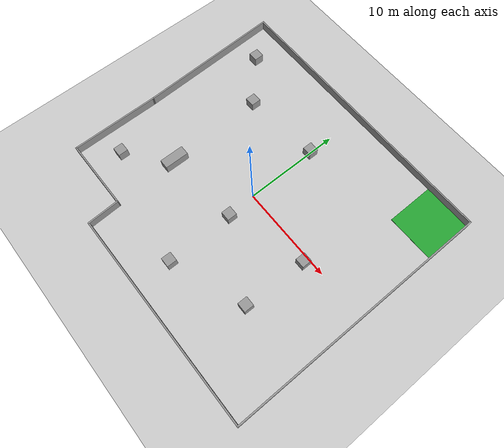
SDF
<sdf version="1.6">
 <world name="default">
  <light name="sun" type="directional">
   <pose>0 0 10 0 -0 0</pose>
   <diffuse>0.8 0.8 0.8 1</diffuse>
   <specular>0.2 0.2 0.2 1</specular>
   <attenuation>
    <range>1000</range>
    <constant>0.9</constant>
    <linear>0.01</linear>
    <quadratic>0.001</quadratic>
   </attenuation>
   <direction>-0.5 0.1 -0.9</direction>
  </light>
  <model name="ground_plane">
   <static>1</static>
   <link name="link">
    <collision name="collision">
     <geometry><plane><normal>0 0 1</normal><size>100 100</size></plane></geometry>
     <surface>
      <contact><collide_bitmask>65535</collide_bitmask></contact>
      <friction><ode><mu>100</mu><mu2>50</mu2></ode></friction>
     </surface>
    </collision>
    <visual name="visual">
     <cast_shadows>0</cast_shadows>
     <geometry><plane><normal>0 0 1</normal><size>100 100</size></plane></geometry>
     <material>
      <script><uri>file://media/materials/scripts/gazebo.material</uri><name>Gazebo/Grey</name></script>
     </material>
    </visual>
   </link>
  </model>
  <gravity>0 0 -9.8</gravity>
  <magnetic_field>6e-06 2.3e-05 -4.2e-05</magnetic_field>
  <atmosphere type="adiabatic"/>
  <physics name="default_physics" default="0" type="ode">
   <max_step_size>0.001</max_step_size>
   <real_time_factor>1</real_time_factor>
   <real_time_update_rate>1000</real_time_update_rate>
  </physics>
  <scene><ambient>0.4 0.4 0.4 1</ambient><background>0.7 0.7 0.7 1</background><shadows>1</shadows></scene>
  <audio><device>default</device></audio>
  <spherical_coordinates>
   <surface_model>EARTH_WGS84</surface_model>
   <latitude_deg>0</latitude_deg>
   <longitude_deg>0</longitude_deg>
   <elevation>0</elevation>
   <heading_deg>0</heading_deg>
  </spherical_coordinates>
  <model name="walls_Projet4A">
   <link name="Wall_0">
    <collision name="Wall_0_Collision">
     <geometry><box><size>22.5 0.15 1</size></box></geometry>
     <pose>0 0 0.5 0 -0 0</pose>
    </collision>
    <visual name="Wall_0_Visual">
     <pose>0 0 0.5 0 -0 0</pose>
     <geometry><box><size>22.5 0.15 1</size></box></geometry>
     <material>
      <script><uri>file://media/materials/scripts/gazebo.material</uri><name>Gazebo/Grey</name></script>
      <ambient>1 1 1 1</ambient>
     </material>
     <meta><layer>0</layer></meta>
    </visual>
    <pose>4.00123 -13.6745 0 0 -0 0</pose>
   </link>
   <link name="Wall_10">
    <collision name="Wall_10_Collision">
     <geometry><box><size>30.5 0.15 1</size></box></geometry>
     <pose>0 0 0.5 0 -0 0</pose>
    </collision>
    <visual name="Wall_10_Visual">
     <pose>0 0 0.5 0 -0 0</pose>
     <geometry><box><size>30.5 0.15 1</size></box></geometry>
     <material>
      <script><uri>file://media/materials/scripts/gazebo.material</uri><name>Gazebo/Grey</name></script>
      <ambient>1 1 1 1</ambient>
     </material>
     <meta><layer>0</layer></meta>
    </visual>
    <pose>0.001228 13.6755 0 0 -0 3.14159</pose>
   </link>
   <link name="Wall_11">
    <collision name="Wall_11_Collision">
     <geometry><box><size>15.1583 0.15 1</size></box></geometry>
     <pose>0 0 0.5 0 -0 0</pose>
    </collision>
    <visual name="Wall_11_Visual">
     <pose>0 0 0.5 0 -0 0</pose>
     <geometry><box><size>15.1583 0.15 1</size></box></geometry>
     <material>
      <script><uri>file://media/materials/scripts/gazebo.material</uri><name>Gazebo/Grey</name></script>
      <ambient>1 1 1 1</ambient>
     </material>
     <meta><layer>0</layer></meta>
    </visual>
    <pose>-14.9238 6.17546 0 0 -0 -1.53747</pose>
   </link>
   <link name="Wall_5">
    <collision name="Wall_5_Collision">
     <geometry><box><size>9.25 0.15 1</size></box></geometry>
     <pose>0 0 0.5 0 -0 0</pose>
    </collision>
    <visual name="Wall_5_Visual">
     <pose>0 0 0.5 0 -0 0</pose>
     <geometry><box><size>9.25 0.15 1</size></box></geometry>
     <material>
      <script><uri>file://media/materials/scripts/gazebo.material</uri><name>Gazebo/Grey</name></script>
      <ambient>1 1 1 1</ambient>
     </material>
     <meta><layer>0</layer></meta>
    </visual>
    <pose>-14.6738 -5.87454 0 0 -0 -1.5708</pose>
   </link>
   <link name="Wall_6">
    <collision name="Wall_6_Collision">
     <geometry><box><size>7.5 0.15 1</size></box></geometry>
     <pose>0 0 0.5 0 -0 0</pose>
    </collision>
    <visual name="Wall_6_Visual">
     <pose>0 0 0.5 0 -0 0</pose>
     <geometry><box><size>7.5 0.15 1</size></box></geometry>
     <material>
      <script><uri>file://media/materials/scripts/gazebo.material</uri><name>Gazebo/Grey</name></script>
      <ambient>1 1 1 1</ambient>
     </material>
     <meta><layer>0</layer></meta>
    </visual>
    <pose>-10.9988 -10.4245 0 0 -0 0</pose>
   </link>
   <link name="Wall_7">
    <collision name="Wall_7_Collision">
     <geometry><box><size>3.40346 0.15 1</size></box></geometry>
     <pose>0 0 0.5 0 -0 0</pose>
    </collision>
    <visual name="Wall_7_Visual">
     <pose>0 0 0.5 0 -0 0</pose>
     <geometry><box><size>3.40346 0.15 1</size></box></geometry>
     <material>
      <script><uri>file://media/materials/scripts/gazebo.material</uri><name>Gazebo/Grey</name></script>
      <ambient>1 1 1 1</ambient>
     </material>
     <meta><layer>0</layer></meta>
    </visual>
    <pose>-7.24877 -12.0495 0 0 -0 -1.52468</pose>
   </link>
   <link name="Wall_9">
    <collision name="Wall_9_Collision">
     <geometry><box><size>27.5 0.15 1</size></box></geometry>
     <pose>0 0 0.5 0 -0 0</pose>
    </collision>
    <visual name="Wall_9_Visual">
     <pose>0 0 0.5 0 -0 0</pose>
     <geometry><box><size>27.5 0.15 1</size></box></geometry>
     <material>
      <script><uri>file://media/materials/scripts/gazebo.material</uri><name>Gazebo/Grey</name></script>
      <ambient>1 1 1 1</ambient>
     </material>
     <meta><layer>0</layer></meta>
    </visual>
    <pose>15.1762 0.000461 0 0 -0 1.5708</pose>
   </link>
   <static>1</static>
  </model>
  <model name="unit_box_0">
   <pose>7.92941 -7.12408 0.5 0 -0 5e-06</pose>
   <link name="link">
    <inertial>
     <mass>1</mass>
     <inertia>
      <ixx>0.166667</ixx>
      <ixy>0</ixy>
      <ixz>0</ixz>
      <iyy>0.166667</iyy>
      <iyz>0</iyz>
      <izz>0.166667</izz>
     </inertia>
    </inertial>
    <collision name="collision"><geometry><box><size>1 1 1</size></box></geometry></collision>
    <visual name="visual">
     <geometry><box><size>1 1 1</size></box></geometry>
     <material>
      <script><name>Gazebo/Grey</name><uri>file://media/materials/scripts/gazebo.material</uri></script>
     </material>
    </visual>
   </link>
  </model>
  <model name="unit_box_2">
   <pose>-12.2436 10.3203 0.5 0 -0 5e-06</pose>
   <link name="link">
    <inertial>
     <mass>1</mass>
     <inertia>
      <ixx>0.166667</ixx>
      <ixy>0</ixy>
      <ixz>0</ixz>
      <iyy>0.166667</iyy>
      <iyz>0</iyz>
      <izz>0.166667</izz>
     </inertia>
    </inertial>
    <collision name="collision"><geometry><box><size>1 1 1</size></box></geometry></collision>
    <visual name="visual">
     <geometry><box><size>1 1 1</size></box></geometry>
     <material>
      <script><name>Gazebo/Grey</name><uri>file://media/materials/scripts/gazebo.material</uri></script>
     </material>
    </visual>
   </link>
  </model>
  <model name="unit_box_3">
   <pose>-11.7958 -7.14595 0.5 0 -0 0</pose>
   <link name="link">
    <inertial>
     <mass>1</mass>
     <inertia>
      <ixx>0.166667</ixx>
      <ixy>0</ixy>
      <ixz>0</ixz>
      <iyy>0.166667</iyy>
      <iyz>0</iyz>
      <izz>0.166667</izz>
     </inertia>
    </inertial>
    <collision name="collision"><geometry><box><size>1 1 1</size></box></geometry></collision>
    <visual name="visual">
     <geometry><box><size>1 1 1</size></box></geometry>
     <material>
      <script><name>Gazebo/Grey</name><uri>file://media/materials/scripts/gazebo.material</uri></script>
     </material>
    </visual>
   </link>
  </model>
  <model name="unit_box_4">
   <pose>0.382968 -9.93961 0.5 0 -0 5e-06</pose>
   <link name="link">
    <inertial>
     <mass>1</mass>
     <inertia>
      <ixx>0.166667</ixx>
      <ixy>0</ixy>
      <ixz>0</ixz>
      <iyy>0.166667</iyy>
      <iyz>0</iyz>
      <izz>0.166667</izz>
     </inertia>
    </inertial>
    <collision name="collision"><geometry><box><size>1 1 1</size></box></geometry></collision>
    <visual name="visual">
     <geometry><box><size>1 1 1</size></box></geometry>
     <material>
      <script><name>Gazebo/Grey</name><uri>file://media/materials/scripts/gazebo.material</uri></script>
     </material>
    </visual>
   </link>
  </model>
  <model name="unit_box_5">
   <pose>-0.016805 7.30651 0.5 0 -0 -5e-06</pose>
   <link name="link">
    <inertial>
     <mass>1</mass>
     <inertia>
      <ixx>0.166667</ixx>
      <ixy>0</ixy>
      <ixz>0</ixz>
      <iyy>0.166667</iyy>
      <iyz>0</iyz>
      <izz>0.166667</izz>
     </inertia>
    </inertial>
    <collision name="collision"><geometry><box><size>1 1 1</size></box></geometry></collision>
    <visual name="visual">
     <geometry><box><size>1 1 1</size></box></geometry>
     <material>
      <script><name>Gazebo/Grey</name><uri>file://media/materials/scripts/gazebo.material</uri></script>
     </material>
    </visual>
   </link>
  </model>
  <model name="green_platform">
   <link name="link">
    <inertial>
     <mass>1</mass>
     <inertia>
      <ixx>0.166667</ixx>
      <ixy>0</ixy>
      <ixz>0</ixz>
      <iyy>0.166667</iyy>
      <iyz>0</iyz>
      <izz>0.166667</izz>
     </inertia>
    </inertial>
    <visual name="visual">
     <geometry><box><size>5 5 0.02</size></box></geometry>
     <material>
      <script><name>Gazebo/Green</name><uri>file://media/materials/scripts/gazebo.material</uri></script>
      <shader type="pixel"><normal_map>__default__</normal_map></shader>
      <ambient>0 1 0 1</ambient>
      <diffuse>0.1 1 0.1 1</diffuse>
      <specular>0.01 0.01 0.01 1</specular>
      <emissive>0 0 0 1</emissive>
     </material>
     <pose>0 0 0.01 0 -0 0</pose>
    </visual>
   </link>
   <static>1</static>
   <pose>12.7064 11.1121 0 0 -0 0</pose>
  </model>
  <model name="box6">
   <link name="link">
    <inertial>
     <mass>1</mass>
     <inertia>
      <ixx>0.166667</ixx>
      <ixy>0</ixy>
      <ixz>0</ixz>
      <iyy>0.166667</iyy>
      <iyz>0</iyz>
      <izz>0.166667</izz>
     </inertia>
    </inertial>
    <visual name="visual">
     <geometry><box><size>1 2.5 1</size></box></geometry>
     <material>
      <script><name>Gazebo/Grey</name><uri>file://media/materials/scripts/gazebo.material</uri></script>
      <shader type="vertex"><normal_map>__default__</normal_map></shader>
      <ambient>0.3 0.3 0.3 1</ambient>
      <diffuse>0.7 0.7 0.7 1</diffuse>
      <specular>0.01 0.01 0.01 1</specular>
      <emissive>0 0 0 1</emissive>
     </material>
    </visual>
    <collision name="collision">
     <geometry><box><size>1 2.5 1</size></box></geometry>
     <surface>
      <friction>
       <ode><mu>1</mu><mu2>1</mu2><fdir1>0 0 0</fdir1><slip1>0</slip1><slip2>0</slip2></ode>
       <torsional>
        <coefficient>1</coefficient>
        <patch_radius>0</patch_radius>
        <surface_radius>0</surface_radius>
        <use_patch_radius>1</use_patch_radius>
        <ode><slip>0</slip></ode>
       </torsional>
      </friction>
      <bounce><restitution_coefficient>0</restitution_coefficient><threshold>1e+06</threshold></bounce>
      <contact>
       <collide_without_contact>0</collide_without_contact>
       <collide_without_contact_bitmask>1</collide_without_contact_bitmask>
       <collide_bitmask>1</collide_bitmask>
       <ode>
        <soft_cfm>0</soft_cfm>
        <soft_erp>0.2</soft_erp>
        <kp>1e+13</kp>
        <kd>1</kd>
        <max_vel>0.01</max_vel>
        <min_depth>0</min_depth>
       </ode>
       <bullet>
        <split_impulse>1</split_impulse>
        <split_impulse_penetration_threshold>-0.01</split_impulse_penetration_threshold>
        <soft_cfm>0</soft_cfm>
        <soft_erp>0.2</soft_erp>
        <kp>1e+13</kp>
        <kd>1</kd>
       </bullet>
      </contact>
     </surface>
    </collision>
   </link>
   <static>0</static>
   <pose>-7.76678 -3.57709 0.499937 -5.1e-05 -0 -0</pose>
  </model>
  <model name="unit_box_6">
   <pose>8.10606 -0.616198 0.5 0 -0 5e-06</pose>
   <link name="link">
    <inertial>
     <mass>1</mass>
     <inertia>
      <ixx>0.166667</ixx>
      <ixy>0</ixy>
      <ixz>0</ixz>
      <iyy>0.166667</iyy>
      <iyz>0</iyz>
      <izz>0.166667</izz>
     </inertia>
    </inertial>
    <collision name="collision"><geometry><box><size>1 1 1</size></box></geometry></collision>
    <visual name="visual">
     <geometry><box><size>1 1 1</size></box></geometry>
     <material>
      <script><name>Gazebo/Grey</name><uri>file://media/materials/scripts/gazebo.material</uri></script>
     </material>
    </visual>
   </link>
  </model>
  <model name="unit_box_7">
   <pose>0.289245 -3.03625 0.5 0 -0 5e-06</pose>
   <link name="link">
    <inertial>
     <mass>1</mass>
     <inertia>
      <ixx>0.166667</ixx>
      <ixy>0</ixy>
      <ixz>0</ixz>
      <iyy>0.166667</iyy>
      <iyz>0</iyz>
      <izz>0.166667</izz>
     </inertia>
    </inertial>
    <collision name="collision"><geometry><box><size>1 1 1</size></box></geometry></collision>
    <visual name="visual">
     <geometry><box><size>1 1 1</size></box></geometry>
     <material>
      <script><name>Gazebo/Grey</name><uri>file://media/materials/scripts/gazebo.material</uri></script>
     </material>
    </visual>
   </link>
  </model>
  <model name="unit_box_8">
   <pose>-8.05689 6.53814 0.5 0 -0 5e-06</pose>
   <link name="link">
    <inertial>
     <mass>1</mass>
     <inertia>
      <ixx>0.166667</ixx>
      <ixy>0</ixy>
      <ixz>0</ixz>
      <iyy>0.166667</iyy>
      <iyz>0</iyz>
      <izz>0.166667</izz>
     </inertia>
    </inertial>
    <collision name="collision"><geometry><box><size>1 1 1</size></box></geometry></collision>
    <visual name="visual">
     <geometry><box><size>1 1 1</size></box></geometry>
     <material>
      <script><name>Gazebo/Grey</name><uri>file://media/materials/scripts/gazebo.material</uri></script>
     </material>
    </visual>
   </link>
  </model>
 </world>
</sdf>
